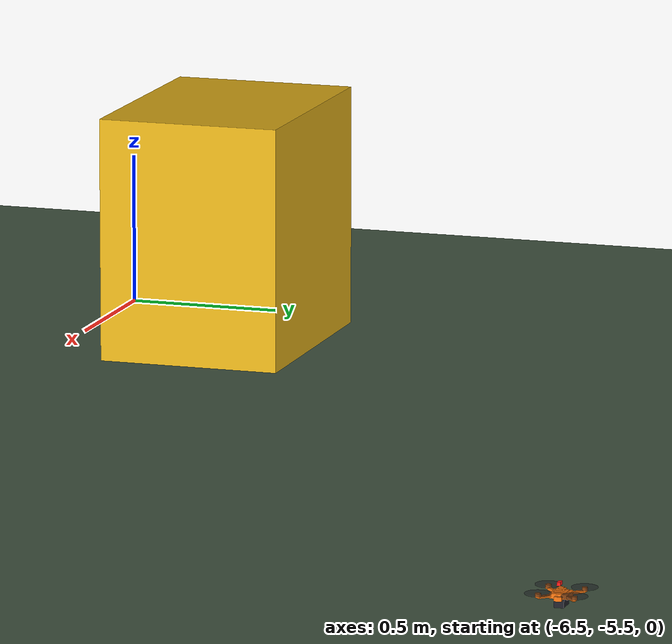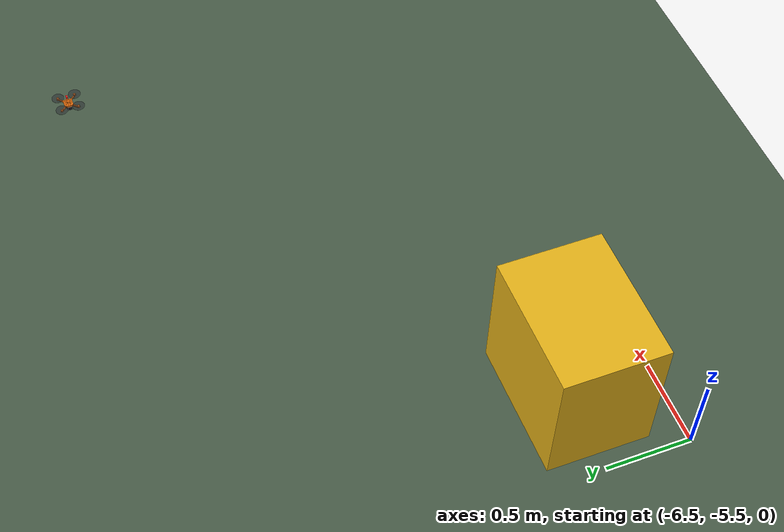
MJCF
<mujoco model="tar_step0_empty">
  <compiler angle="radian" autolimits="true" inertiafromgeom="true" />
  <option timestep="0.002" gravity="0 0 -9.81" integrator="RK4" />
  <statistic center="0 0 2" extent="15" />
  <visual>
    <global offwidth="1280" offheight="960" />
    <headlight ambient="0.4 0.4 0.4" />
  </visual>
  <asset>
    <texture name="sky" type="skybox" builtin="gradient" rgb1="0.35 0.55 0.8" rgb2="0.85 0.9 0.95" width="512" height="512" />
    <texture name="grid" type="2d" builtin="checker" rgb1="0.24 0.32 0.24" rgb2="0.32 0.4 0.32" width="256" height="256" />
    <material name="ground" texture="grid" texrepeat="30 30" />
  </asset>
  <worldbody>
    <light pos="0 0 15" dir="-0.2 -0.3 -1" directional="true" />
    <geom name="floor" type="plane" size="30 30 0.1" material="ground" friction="0.8 0.01 0.001" />
    <geom name="ground_station" type="box" pos="-6 -5 0.4" size="0.4 0.3 0.4" rgba="0.9 0.7 0.1 1" />
    <body name="relay_0" pos="-3 -3 0.05" quat="1 0 0 0">
      <freejoint name="relay_0_free" />
      <geom name="relay_0_center_frame" type="box" pos="-0.000827662721893 0.000147928994083 0.00314644970414" size="0.0275 0.0275 0.0075" quat="1 0 0 0" mass="0.013" rgba="0.95 0.45 0.06 1" group="0" contype="1" conaffinity="1" />
      <geom name="relay_0_battery_2s" type="box" pos="-0.000827662721893 0.000147928994083 -0.0168535502959" size="0.0275 0.015 0.0125" quat="1 0 0 0" mass="0.045" rgba="0.12 0.12 0.15 1" group="0" contype="1" conaffinity="1" />
      <geom name="relay_0_flight_pcb" type="box" pos="-0.000827662721893 0.000147928994083 0.0131464497041" size="0.018 0.0195 0.0008" quat="1 0 0 0" mass="0.008" rgba="0.95 0.45 0.06 1" group="0" contype="0" conaffinity="0" />
      <geom name="relay_0_esp32_s3" type="box" pos="0.00717233727811 0.000147928994083 0.0151464497041" size="0.0035 0.0035 0.0005" quat="1 0 0 0" mass="0.0008" rgba="0.95 0.45 0.06 1" group="3" contype="0" conaffinity="0" />
      <geom name="relay_0_icm_42688" type="box" pos="-0.000827662721893 0.000147928994083 0.0151464497041" size="0.0015 0.0015 0.0005" quat="1 0 0 0" mass="0.0001" rgba="0.95 0.45 0.06 1" group="3" contype="0" conaffinity="0" />
      <geom name="relay_0_gnss_chip" type="box" pos="-0.00982766272189 0.000147928994083 0.0151464497041" size="0.005 0.005 0.001" quat="1 0 0 0" mass="0.0005" rgba="0.95 0.45 0.06 1" group="3" contype="0" conaffinity="0" />
      <geom name="relay_0_gnss_antenna_allowance" type="box" pos="-0.000827662721893 0.000147928994083 0.0231464497041" size="0.0075 0.0075 0.0015" quat="1 0 0 0" mass="0.003" rgba="0.95 0.45 0.06 1" group="0" contype="1" conaffinity="1" />
      <geom name="relay_0_vocore_antenna_assembly" type="box" pos="-0.000827662721893 0.000147928994083 0.0191464497041" size="0.0128 0.0128 0.0015" quat="1 0 0 0" mass="0.005" rgba="0.95 0.45 0.06 1" group="0" contype="1" conaffinity="1" />
      <geom name="relay_0_tf_luna" type="box" pos="0.0211723372781 0.000147928994083 -0.00185355029586" size="0.0175 0.0105 0.0065" quat="1 0 0 0" mass="0.005" rgba="0.95 0.45 0.06 1" group="0" contype="1" conaffinity="1" />
      <geom name="relay_0_esc_4in1" type="box" pos="-0.000827662721893 0.000147928994083 0.00914644970414" size="0.0125 0.0125 0.002" quat="1 0 0 0" mass="0.0054" rgba="0.95 0.45 0.06 1" group="3" contype="0" conaffinity="0" />
      <geom name="relay_0_power_harness" type="box" pos="-0.000827662721893 0.000147928994083 0.00314644970414" size="0.02 0.02 0.003" quat="1 0 0 0" mass="0.007" rgba="0.95 0.45 0.06 1" group="3" contype="0" conaffinity="0" />
      <geom name="relay_0_regulator_passives_allowance" type="box" pos="-0.000827662721893 -0.00985207100592 0.0151464497041" size="0.0075 0.0075 0.0015" quat="1 0 0 0" mass="0.002" rgba="0.95 0.45 0.06 1" group="3" contype="0" conaffinity="0" />
      <geom name="relay_0_arm_0" type="box" pos="0.0256888415726 0.0266644332886 0.00314644970414" size="0.0375 0.004 0.004" quat="0.923879532511 0 0 0.382683432365" mass="0.003" rgba="0.95 0.45 0.06 1" group="0" contype="1" conaffinity="1" />
      <geom name="relay_0_motor_0" type="cylinder" pos="0.0522053458671 0.0531809375831 0.00914644970414" size="0.008 0.006" quat="1 0 0 0" mass="0.0056" rgba="0.95 0.45 0.06 1" group="0" contype="1" conaffinity="1" />
      <geom name="relay_0_propeller_0" type="cylinder" pos="0.0522053458671 0.0531809375831 0.0151464497041" size="0.0381 0.001" quat="1 0 0 0" mass="0.0015" rgba="0.15 0.15 0.18 0.5" group="0" contype="1" conaffinity="1" />
      <geom name="relay_0_arm_1" type="box" pos="-0.0273441670164 0.0266644332886 0.00314644970414" size="0.0375 0.004 0.004" quat="0.382683432365 0 0 0.923879532511" mass="0.003" rgba="0.95 0.45 0.06 1" group="0" contype="1" conaffinity="1" />
      <geom name="relay_0_motor_1" type="cylinder" pos="-0.0538606713109 0.0531809375831 0.00914644970414" size="0.008 0.006" quat="1 0 0 0" mass="0.0056" rgba="0.95 0.45 0.06 1" group="0" contype="1" conaffinity="1" />
      <geom name="relay_0_propeller_1" type="cylinder" pos="-0.0538606713109 0.0531809375831 0.0151464497041" size="0.0381 0.001" quat="1 0 0 0" mass="0.0015" rgba="0.15 0.15 0.18 0.5" group="0" contype="1" conaffinity="1" />
      <geom name="relay_0_arm_2" type="box" pos="-0.0273441670164 -0.0263685753004 0.00314644970414" size="0.0375 0.004 0.004" quat="0.382683432365 0 0 -0.923879532511" mass="0.003" rgba="0.95 0.45 0.06 1" group="0" contype="1" conaffinity="1" />
      <geom name="relay_0_motor_2" type="cylinder" pos="-0.0538606713109 -0.0528850795949 0.00914644970414" size="0.008 0.006" quat="1 0 0 0" mass="0.0056" rgba="0.95 0.45 0.06 1" group="0" contype="1" conaffinity="1" />
      <geom name="relay_0_propeller_2" type="cylinder" pos="-0.0538606713109 -0.0528850795949 0.0151464497041" size="0.0381 0.001" quat="1 0 0 0" mass="0.0015" rgba="0.15 0.15 0.18 0.5" group="0" contype="1" conaffinity="1" />
      <geom name="relay_0_arm_3" type="box" pos="0.0256888415726 -0.0263685753004 0.00314644970414" size="0.0375 0.004 0.004" quat="0.923879532511 0 0 -0.382683432365" mass="0.003" rgba="0.95 0.45 0.06 1" group="0" contype="1" conaffinity="1" />
      <geom name="relay_0_motor_3" type="cylinder" pos="0.0522053458671 -0.0528850795949 0.00914644970414" size="0.008 0.006" quat="1 0 0 0" mass="0.0056" rgba="0.95 0.45 0.06 1" group="0" contype="1" conaffinity="1" />
      <geom name="relay_0_propeller_3" type="cylinder" pos="0.0522053458671 -0.0528850795949 0.0151464497041" size="0.0381 0.001" quat="1 0 0 0" mass="0.0015" rgba="0.15 0.15 0.18 0.5" group="0" contype="1" conaffinity="1" />
      <site name="relay_0_rotor_0" pos="0.0522053458671 0.0531809375831 0.0151464497041" size="0.002" rgba="0 0 0 0" />
      <site name="relay_0_rotor_1" pos="-0.0538606713109 0.0531809375831 0.0151464497041" size="0.002" rgba="0 0 0 0" />
      <site name="relay_0_rotor_2" pos="-0.0538606713109 -0.0528850795949 0.0151464497041" size="0.002" rgba="0 0 0 0" />
      <site name="relay_0_rotor_3" pos="0.0522053458671 -0.0528850795949 0.0151464497041" size="0.002" rgba="0 0 0 0" />
      <site name="relay_0_heading" type="box" pos="0.01875 0 0.04" size="0.01125 0.005 0.005" rgba="1 0.1 0.1 1" />
    </body>
  </worldbody>
  <actuator>
    <motor name="relay_0_motor_0" site="relay_0_rotor_0" gear="0 0 1 0 0 0.008" ctrllimited="true" ctrlrange="0 0.8" forcelimited="true" forcerange="0 0.8" />
    <motor name="relay_0_motor_1" site="relay_0_rotor_1" gear="0 0 1 0 0 -0.008" ctrllimited="true" ctrlrange="0 0.8" forcelimited="true" forcerange="0 0.8" />
    <motor name="relay_0_motor_2" site="relay_0_rotor_2" gear="0 0 1 0 0 0.008" ctrllimited="true" ctrlrange="0 0.8" forcelimited="true" forcerange="0 0.8" />
    <motor name="relay_0_motor_3" site="relay_0_rotor_3" gear="0 0 1 0 0 -0.008" ctrllimited="true" ctrlrange="0 0.8" forcelimited="true" forcerange="0 0.8" />
  </actuator>
</mujoco>
